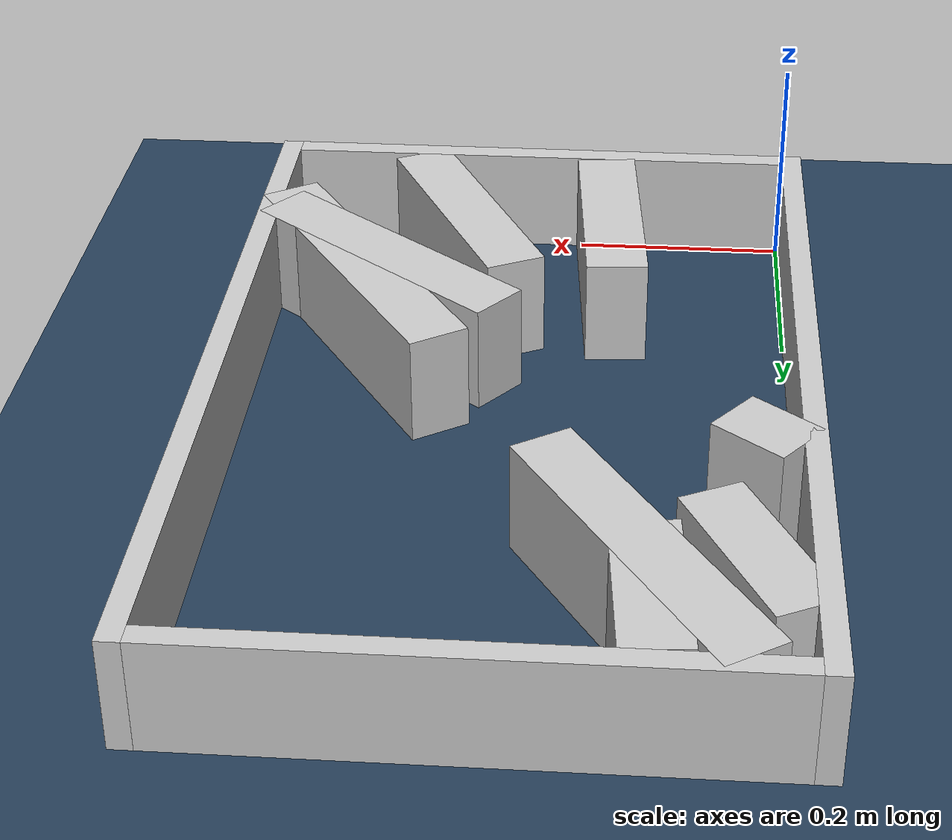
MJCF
<?xml version="1.0" ?>
<mujoco model="generated_real_template">
  <compiler angle="degree"/>
  <option timestep="0.002" integrator="implicitfast" iterations="100" cone="elliptic"/>
  <default>
    <geom density="1"/>
  </default>
  <asset>
    <texture builtin="gradient" height="3072" rgb1="0.3 0.5 0.7" rgb2="0 0 0" type="skybox" width="512"/>
    <texture builtin="checker" height="300" mark="edge" markrgb="0.8 0.8 0.8" name="groundplane" rgb1="0.2 0.3 0.4" rgb2="0.1 0.2 0.3" type="2d" width="300"/>
    <material name="groundplane" reflectance="0.2" texrepeat="5 5" texture="groundplane" texuniform="true"/>
  </asset>
  <worldbody>
    <light dir="0 0 -1" directional="true" pos="0 0 1.5"/>
    <geom name="floor" type="plane" condim="4" friction="0.5 0.005 0.001" material="groundplane" size="0 0 0.05"/>
    <body name="walls">
      <geom name="wall_boundary_left" type="box" condim="4" friction="1.0 0.005 0.0001" rgba="0.8 0.8 0.8 1" pos="-0.010000 0.387500 0.050000" euler="0 0 0.000000" size="0.010000 0.407500 0.050000"/>
      <geom name="wall_boundary_right" type="box" condim="4" friction="1.0 0.005 0.0001" rgba="0.8 0.8 0.8 1" pos="0.500000 0.387500 0.050000" euler="0 0 0.000000" size="0.010000 0.407500 0.050000"/>
      <geom name="wall_boundary_bottom" type="box" condim="4" friction="1.0 0.005 0.0001" rgba="0.8 0.8 0.8 1" pos="0.245000 -0.010000 0.050000" euler="0 0 0.000000" size="0.245000 0.010000 0.050000"/>
      <geom name="wall_boundary_top" type="box" condim="4" friction="1.0 0.005 0.0001" rgba="0.8 0.8 0.8 1" pos="0.245000 0.785000 0.050000" euler="0 0 0.000000" size="0.245000 0.010000 0.050000"/>
      <geom name="wall_inner_1_1" type="box" condim="4" friction="1.0 0.005 0.0001" rgba="0.8 0.8 0.8 1" pos="0.167932 0.112675 0.050000" euler="0 0 94.568059" size="0.113034 0.028500 0.050000"/>
      <geom name="wall_inner_1_2" type="box" condim="4" friction="1.0 0.005 0.0001" rgba="0.8 0.8 0.8 1" pos="0.121149 0.698224 0.050000" euler="0 0 94.568059" size="0.077021 0.028500 0.050000"/>
      <geom name="wall_inner_2_1" type="box" condim="4" friction="1.0 0.005 0.0001" rgba="0.8 0.8 0.8 1" pos="0.128662 0.644274 0.050000" euler="0 0 -57.265889" size="0.155406 0.028500 0.050000"/>
      <geom name="wall_inner_2_2" type="box" condim="4" friction="1.0 0.005 0.0001" rgba="0.8 0.8 0.8 1" pos="0.398224 0.224938 0.050000" euler="0 0 -57.265889" size="0.162372 0.028500 0.050000"/>
      <geom name="wall_inner_3_1" type="box" condim="4" friction="1.0 0.005 0.0001" rgba="0.8 0.8 0.8 1" pos="0.376187 0.206000 0.050000" euler="0 0 141.220669" size="0.145996 0.028500 0.050000"/>
      <geom name="wall_inner_3_2" type="box" condim="4" friction="1.0 0.005 0.0001" rgba="0.8 0.8 0.8 1" pos="0.028894 0.485025 0.050000" euler="0 0 141.220669" size="0.037064 0.028500 0.050000"/>
      <geom name="wall_inner_4_1" type="box" condim="4" friction="1.0 0.005 0.0001" rgba="0.8 0.8 0.8 1" pos="0.308332 0.111661 0.050000" euler="0 0 116.444796" size="0.124710 0.028500 0.050000"/>
      <geom name="wall_inner_4_2" type="box" condim="4" friction="1.0 0.005 0.0001" rgba="0.8 0.8 0.8 1" pos="0.041012 0.649118 0.050000" euler="0 0 116.444796" size="0.079699 0.028500 0.050000"/>
    </body>
  </worldbody>
</mujoco>
